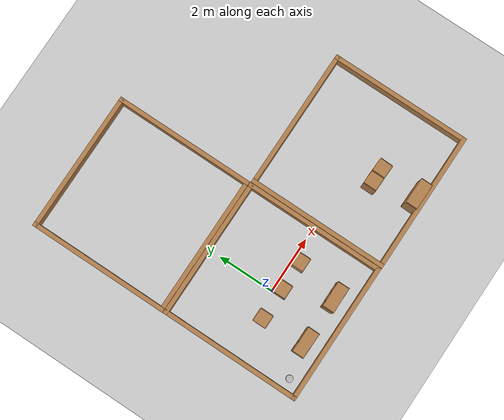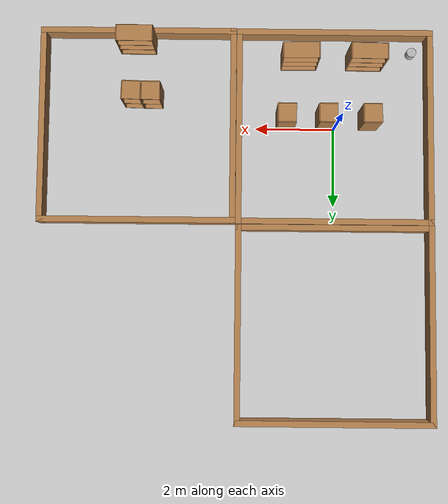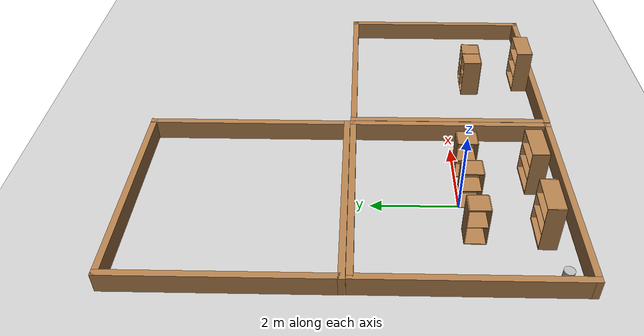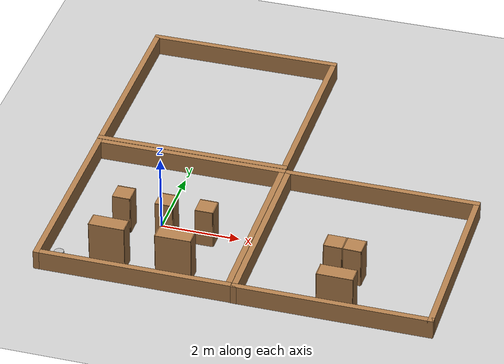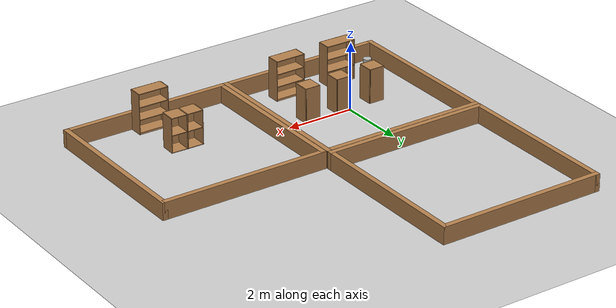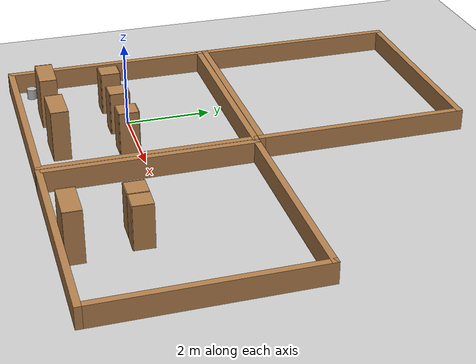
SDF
<sdf version="1.7">
 <world name="default">
  <model name="ground_plane">
   <static>1</static>
   <link name="link">
    <collision name="collision">
     <geometry><plane><normal>0 0 1</normal><size>100 100</size></plane></geometry>
     <surface><friction><ode><mu>100</mu><mu2>50</mu2></ode></friction></surface>
    </collision>
    <visual name="visual">
     <cast_shadows>0</cast_shadows>
     <geometry><plane><normal>0 0 1</normal><size>100 100</size></plane></geometry>
     <material>
      <script><uri>file://media/materials/scripts/gazebo.material</uri><name>Gazebo/Grey</name></script>
     </material>
    </visual>
   </link>
  </model>
  <model name="turtlebot3_dqn_world">
   <pose>0.00548 -0.006455 0 0 -0 0</pose>
   <static>1</static>
   <frame name="turtlebot3_square::__model__" attached_to="turtlebot3_square::Wall_1">
    <pose relative_to="__model__">0 0 0 0 -0 0</pose>
   </frame>
   <link name="turtlebot3_square::Wall_1">
    <collision name="Wall_1_Collision">
     <geometry><box><size>5 0.15 0.5</size></box></geometry>
     <pose>0 0 0.25 0 -0 0</pose>
    </collision>
    <visual name="Wall_1_Visual">
     <pose>0 0 0.25 0 -0 0</pose>
     <geometry><box><size>5 0.15 0.5</size></box></geometry>
     <material>
      <script><uri>file://media/materials/scripts/gazebo.material</uri><name>Gazebo/Wood</name></script>
      <ambient>1 1 1 1</ambient>
     </material>
    </visual>
    <pose relative_to="turtlebot3_square::__model__">-2.425 0 0 0 -0 1.5708</pose>
   </link>
   <link name="turtlebot3_square::Wall_2">
    <collision name="Wall_2_Collision">
     <geometry><box><size>5 0.15 0.5</size></box></geometry>
     <pose>0 0 0.25 0 -0 0</pose>
    </collision>
    <visual name="Wall_2_Visual">
     <pose>0 0 0.25 0 -0 0</pose>
     <geometry><box><size>5 0.15 0.5</size></box></geometry>
     <material>
      <script><uri>file://media/materials/scripts/gazebo.material</uri><name>Gazebo/Wood</name></script>
      <ambient>1 1 1 1</ambient>
     </material>
    </visual>
    <pose relative_to="turtlebot3_square::__model__">0 2.425 0 0 -0 0</pose>
   </link>
   <link name="turtlebot3_square::Wall_3">
    <collision name="Wall_3_Collision">
     <geometry><box><size>5 0.15 0.5</size></box></geometry>
     <pose>0 0 0.25 0 -0 0</pose>
    </collision>
    <visual name="Wall_3_Visual">
     <pose>0 0 0.25 0 -0 0</pose>
     <geometry><box><size>5 0.15 0.5</size></box></geometry>
     <material>
      <script><uri>file://media/materials/scripts/gazebo.material</uri><name>Gazebo/Wood</name></script>
      <ambient>1 1 1 1</ambient>
     </material>
    </visual>
    <pose relative_to="turtlebot3_square::__model__">2.425 0 0 0 0 -1.5708</pose>
   </link>
   <link name="turtlebot3_square::Wall_4">
    <collision name="Wall_4_Collision">
     <geometry><box><size>5 0.15 0.5</size></box></geometry>
     <pose>0 0 0.25 0 -0 0</pose>
    </collision>
    <visual name="Wall_4_Visual">
     <pose>0 0 0.25 0 -0 0</pose>
     <geometry><box><size>5 0.15 0.5</size></box></geometry>
     <material>
      <script><uri>file://media/materials/scripts/gazebo.material</uri><name>Gazebo/Wood</name></script>
      <ambient>1 1 1 1</ambient>
     </material>
    </visual>
    <pose relative_to="turtlebot3_square::__model__">0 -2.425 0 0 -0 3.14159</pose>
   </link>
   <static>1</static>
  </model>
  <model name="turtlebot3_dqn_obstacle2">
   <pose>-0 0 0.124991 0 -0 0</pose>
   <plugin name="obstacle2" filename="libobstacle2.so"/>
   <frame name="obstacle2::__model__" attached_to="obstacle2::link">
    <pose relative_to="__model__">-2 -2 0 0 -0 0</pose>
   </frame>
   <link name="obstacle2::link">
    <collision name="collision">
     <geometry><cylinder><radius>0.12</radius><length>0.25</length></cylinder></geometry>
    </collision>
    <visual name="visual">
     <geometry><cylinder><radius>0.12</radius><length>0.25</length></cylinder></geometry>
    </visual>
    <pose relative_to="obstacle2::__model__">0 0 0 0 -0 0</pose>
    <inertial>
     <inertia><ixx>1</ixx><ixy>0</ixy><ixz>0</ixz><iyy>1</iyy><iyz>0</iyz><izz>1</izz></inertia>
     <mass>1</mass>
    </inertial>
   </link>
  </model>
  <model name="turtlebot3_dqn_world2">
   <static>1</static>
   <frame name="turtlebot3_square::__model__" attached_to="turtlebot3_square::Wall_1">
    <pose relative_to="__model__">0 5 0 0 -0 0</pose>
   </frame>
   <link name="turtlebot3_square::Wall_1">
    <collision name="Wall_1_Collision">
     <geometry><box><size>5 0.15 0.5</size></box></geometry>
     <pose>0 0 0.25 0 -0 0</pose>
    </collision>
    <visual name="Wall_1_Visual">
     <pose>0 0 0.25 0 -0 0</pose>
     <geometry><box><size>5 0.15 0.5</size></box></geometry>
     <material>
      <script><uri>file://media/materials/scripts/gazebo.material</uri><name>Gazebo/Wood</name></script>
      <ambient>1 1 1 1</ambient>
     </material>
    </visual>
    <pose relative_to="turtlebot3_square::__model__">-2.425 0 0 0 -0 1.5708</pose>
   </link>
   <link name="turtlebot3_square::Wall_2">
    <collision name="Wall_2_Collision">
     <geometry><box><size>5 0.15 0.5</size></box></geometry>
     <pose>0 0 0.25 0 -0 0</pose>
    </collision>
    <visual name="Wall_2_Visual">
     <pose>0 0 0.25 0 -0 0</pose>
     <geometry><box><size>5 0.15 0.5</size></box></geometry>
     <material>
      <script><uri>file://media/materials/scripts/gazebo.material</uri><name>Gazebo/Wood</name></script>
      <ambient>1 1 1 1</ambient>
     </material>
    </visual>
    <pose relative_to="turtlebot3_square::__model__">0 2.425 0 0 -0 0</pose>
   </link>
   <link name="turtlebot3_square::Wall_3">
    <collision name="Wall_3_Collision">
     <geometry><box><size>5 0.15 0.5</size></box></geometry>
     <pose>0 0 0.25 0 -0 0</pose>
    </collision>
    <visual name="Wall_3_Visual">
     <pose>0 0 0.25 0 -0 0</pose>
     <geometry><box><size>5 0.15 0.5</size></box></geometry>
     <material>
      <script><uri>file://media/materials/scripts/gazebo.material</uri><name>Gazebo/Wood</name></script>
      <ambient>1 1 1 1</ambient>
     </material>
    </visual>
    <pose relative_to="turtlebot3_square::__model__">2.425 0 0 0 0 -1.5708</pose>
   </link>
   <link name="turtlebot3_square::Wall_4">
    <collision name="Wall_4_Collision">
     <geometry><box><size>5 0.15 0.5</size></box></geometry>
     <pose>0 0 0.25 0 -0 0</pose>
    </collision>
    <visual name="Wall_4_Visual">
     <pose>0 0 0.25 0 -0 0</pose>
     <geometry><box><size>5 0.15 0.5</size></box></geometry>
     <material>
      <script><uri>file://media/materials/scripts/gazebo.material</uri><name>Gazebo/Wood</name></script>
      <ambient>1 1 1 1</ambient>
     </material>
    </visual>
    <pose relative_to="turtlebot3_square::__model__">0 -2.425 0 0 -0 3.14159</pose>
   </link>
   <static>1</static>
  </model>
  <model name="cabinet_1">
   <static>1</static>
   <link name="cabinet_bottom_plate">
    <inertial>
     <pose>0 0 -1 0 -0 0</pose>
     <inertia><ixx>2.05</ixx><ixy>0</ixy><ixz>0</ixz><iyy>2.05</iyy><iyz>0</iyz><izz>2.05</izz></inertia>
     <mass>25</mass>
    </inertial>
    <collision name="cabinet_bottom_plate_geom">
     <pose>0 0 0.01 0 -0 0</pose>
     <geometry><box><size>0.45 0.45 0.02</size></box></geometry>
    </collision>
    <visual name="cabinet_bottom_plate_geom_visual">
     <pose>0 0 0.01 0 -0 0</pose>
     <geometry><box><size>0.45 0.45 0.02</size></box></geometry>
     <material>
      <script><uri>file://media/materials/scripts/gazebo.material</uri><name>Gazebo/Wood</name></script>
     </material>
    </visual>
    <collision name="cabinet_bottom_plate_geom_cabinet_back_plate">
     <pose>0.235 0 0.51 0 -0 0</pose>
     <geometry><box><size>0.02 0.45 1.02</size></box></geometry>
    </collision>
    <visual name="cabinet_bottom_plate_geom_cabinet_back_plate_visual">
     <pose>0.235 0 0.51 0 -0 0</pose>
     <geometry><box><size>0.02 0.45 1.02</size></box></geometry>
     <material>
      <script><uri>file://media/materials/scripts/gazebo.material</uri><name>Gazebo/Wood</name></script>
     </material>
    </visual>
    <collision name="cabinet_bottom_plate_geom_cabinet_left_plate">
     <pose>0 0.235 0.51 0 -0 0</pose>
     <geometry><box><size>0.45 0.02 1.02</size></box></geometry>
    </collision>
    <visual name="cabinet_bottom_plate_geom_cabinet_left_plate_visual">
     <pose>0 0.235 0.51 0 -0 0</pose>
     <geometry><box><size>0.45 0.02 1.02</size></box></geometry>
     <material>
      <script><uri>file://media/materials/scripts/gazebo.material</uri><name>Gazebo/Wood</name></script>
     </material>
    </visual>
    <collision name="cabinet_bottom_plate_geom_cabinet_middle_plate">
     <pose>0 0 0.51 0 -0 0</pose>
     <geometry><box><size>0.45 0.45 0.02</size></box></geometry>
    </collision>
    <visual name="cabinet_bottom_plate_geom_cabinet_middle_plate_visual">
     <pose>0 0 0.51 0 -0 0</pose>
     <geometry><box><size>0.45 0.45 0.02</size></box></geometry>
     <material>
      <script><uri>file://media/materials/scripts/gazebo.material</uri><name>Gazebo/Wood</name></script>
     </material>
    </visual>
    <collision name="cabinet_bottom_plate_geom_cabinet_right_plate">
     <pose>0 -0.235 0.51 0 -0 0</pose>
     <geometry><box><size>0.45 0.02 1.02</size></box></geometry>
    </collision>
    <visual name="cabinet_bottom_plate_geom_cabinet_right_plate_visual">
     <pose>0 -0.235 0.51 0 -0 0</pose>
     <geometry><box><size>0.45 0.02 1.02</size></box></geometry>
     <material>
      <script><uri>file://media/materials/scripts/gazebo.material</uri><name>Gazebo/Wood</name></script>
     </material>
    </visual>
    <collision name="cabinet_bottom_plate_geom_cabinet_top_plate">
     <pose>0 0 1.01 0 -0 0</pose>
     <geometry><box><size>0.45 0.45 0.02</size></box></geometry>
    </collision>
    <visual name="cabinet_bottom_plate_geom_cabinet_top_plate_visual">
     <pose>0 0 1.01 0 -0 0</pose>
     <geometry><box><size>0.45 0.45 0.02</size></box></geometry>
     <material>
      <script><uri>file://media/materials/scripts/gazebo.material</uri><name>Gazebo/Wood</name></script>
     </material>
    </visual>
   </link>
   <pose>1.23211 -0.234998 0 0 -0 0</pose>
  </model>
  <model name="cabinet_2">
   <static>1</static>
   <link name="cabinet_bottom_plate">
    <inertial>
     <pose>0 0 -1 0 -0 0</pose>
     <inertia><ixx>2.05</ixx><ixy>0</ixy><ixz>0</ixz><iyy>2.05</iyy><iyz>0</iyz><izz>2.05</izz></inertia>
     <mass>25</mass>
    </inertial>
    <collision name="cabinet_bottom_plate_geom">
     <pose>0 0 0.01 0 -0 0</pose>
     <geometry><box><size>0.45 0.45 0.02</size></box></geometry>
    </collision>
    <visual name="cabinet_bottom_plate_geom_visual">
     <pose>0 0 0.01 0 -0 0</pose>
     <geometry><box><size>0.45 0.45 0.02</size></box></geometry>
     <material>
      <script><uri>file://media/materials/scripts/gazebo.material</uri><name>Gazebo/Wood</name></script>
     </material>
    </visual>
    <collision name="cabinet_bottom_plate_geom_cabinet_back_plate">
     <pose>0.235 0 0.51 0 -0 0</pose>
     <geometry><box><size>0.02 0.45 1.02</size></box></geometry>
    </collision>
    <visual name="cabinet_bottom_plate_geom_cabinet_back_plate_visual">
     <pose>0.235 0 0.51 0 -0 0</pose>
     <geometry><box><size>0.02 0.45 1.02</size></box></geometry>
     <material>
      <script><uri>file://media/materials/scripts/gazebo.material</uri><name>Gazebo/Wood</name></script>
     </material>
    </visual>
    <collision name="cabinet_bottom_plate_geom_cabinet_left_plate">
     <pose>0 0.235 0.51 0 -0 0</pose>
     <geometry><box><size>0.45 0.02 1.02</size></box></geometry>
    </collision>
    <visual name="cabinet_bottom_plate_geom_cabinet_left_plate_visual">
     <pose>0 0.235 0.51 0 -0 0</pose>
     <geometry><box><size>0.45 0.02 1.02</size></box></geometry>
     <material>
      <script><uri>file://media/materials/scripts/gazebo.material</uri><name>Gazebo/Wood</name></script>
     </material>
    </visual>
    <collision name="cabinet_bottom_plate_geom_cabinet_middle_plate">
     <pose>0 0 0.51 0 -0 0</pose>
     <geometry><box><size>0.45 0.45 0.02</size></box></geometry>
    </collision>
    <visual name="cabinet_bottom_plate_geom_cabinet_middle_plate_visual">
     <pose>0 0 0.51 0 -0 0</pose>
     <geometry><box><size>0.45 0.45 0.02</size></box></geometry>
     <material>
      <script><uri>file://media/materials/scripts/gazebo.material</uri><name>Gazebo/Wood</name></script>
     </material>
    </visual>
    <collision name="cabinet_bottom_plate_geom_cabinet_right_plate">
     <pose>0 -0.235 0.51 0 -0 0</pose>
     <geometry><box><size>0.45 0.02 1.02</size></box></geometry>
    </collision>
    <visual name="cabinet_bottom_plate_geom_cabinet_right_plate_visual">
     <pose>0 -0.235 0.51 0 -0 0</pose>
     <geometry><box><size>0.45 0.02 1.02</size></box></geometry>
     <material>
      <script><uri>file://media/materials/scripts/gazebo.material</uri><name>Gazebo/Wood</name></script>
     </material>
    </visual>
    <collision name="cabinet_bottom_plate_geom_cabinet_top_plate">
     <pose>0 0 1.01 0 -0 0</pose>
     <geometry><box><size>0.45 0.45 0.02</size></box></geometry>
    </collision>
    <visual name="cabinet_bottom_plate_geom_cabinet_top_plate_visual">
     <pose>0 0 1.01 0 -0 0</pose>
     <geometry><box><size>0.45 0.45 0.02</size></box></geometry>
     <material>
      <script><uri>file://media/materials/scripts/gazebo.material</uri><name>Gazebo/Wood</name></script>
     </material>
    </visual>
   </link>
   <pose>0.209044 -0.240001 0 0 -0 0</pose>
  </model>
  <model name="cabinet_3">
   <static>1</static>
   <link name="cabinet_bottom_plate">
    <inertial>
     <pose>0 0 -1 0 -0 0</pose>
     <inertia><ixx>2.05</ixx><ixy>0</ixy><ixz>0</ixz><iyy>2.05</iyy><iyz>0</iyz><izz>2.05</izz></inertia>
     <mass>25</mass>
    </inertial>
    <collision name="cabinet_bottom_plate_geom">
     <pose>0 0 0.01 0 -0 0</pose>
     <geometry><box><size>0.45 0.45 0.02</size></box></geometry>
    </collision>
    <visual name="cabinet_bottom_plate_geom_visual">
     <pose>0 0 0.01 0 -0 0</pose>
     <geometry><box><size>0.45 0.45 0.02</size></box></geometry>
     <material>
      <script><uri>file://media/materials/scripts/gazebo.material</uri><name>Gazebo/Wood</name></script>
     </material>
    </visual>
    <collision name="cabinet_bottom_plate_geom_cabinet_back_plate">
     <pose>0.235 0 0.51 0 -0 0</pose>
     <geometry><box><size>0.02 0.45 1.02</size></box></geometry>
    </collision>
    <visual name="cabinet_bottom_plate_geom_cabinet_back_plate_visual">
     <pose>0.235 0 0.51 0 -0 0</pose>
     <geometry><box><size>0.02 0.45 1.02</size></box></geometry>
     <material>
      <script><uri>file://media/materials/scripts/gazebo.material</uri><name>Gazebo/Wood</name></script>
     </material>
    </visual>
    <collision name="cabinet_bottom_plate_geom_cabinet_left_plate">
     <pose>0 0.235 0.51 0 -0 0</pose>
     <geometry><box><size>0.45 0.02 1.02</size></box></geometry>
    </collision>
    <visual name="cabinet_bottom_plate_geom_cabinet_left_plate_visual">
     <pose>0 0.235 0.51 0 -0 0</pose>
     <geometry><box><size>0.45 0.02 1.02</size></box></geometry>
     <material>
      <script><uri>file://media/materials/scripts/gazebo.material</uri><name>Gazebo/Wood</name></script>
     </material>
    </visual>
    <collision name="cabinet_bottom_plate_geom_cabinet_middle_plate">
     <pose>0 0 0.51 0 -0 0</pose>
     <geometry><box><size>0.45 0.45 0.02</size></box></geometry>
    </collision>
    <visual name="cabinet_bottom_plate_geom_cabinet_middle_plate_visual">
     <pose>0 0 0.51 0 -0 0</pose>
     <geometry><box><size>0.45 0.45 0.02</size></box></geometry>
     <material>
      <script><uri>file://media/materials/scripts/gazebo.material</uri><name>Gazebo/Wood</name></script>
     </material>
    </visual>
    <collision name="cabinet_bottom_plate_geom_cabinet_right_plate">
     <pose>0 -0.235 0.51 0 -0 0</pose>
     <geometry><box><size>0.45 0.02 1.02</size></box></geometry>
    </collision>
    <visual name="cabinet_bottom_plate_geom_cabinet_right_plate_visual">
     <pose>0 -0.235 0.51 0 -0 0</pose>
     <geometry><box><size>0.45 0.02 1.02</size></box></geometry>
     <material>
      <script><uri>file://media/materials/scripts/gazebo.material</uri><name>Gazebo/Wood</name></script>
     </material>
    </visual>
    <collision name="cabinet_bottom_plate_geom_cabinet_top_plate">
     <pose>0 0 1.01 0 -0 0</pose>
     <geometry><box><size>0.45 0.45 0.02</size></box></geometry>
    </collision>
    <visual name="cabinet_bottom_plate_geom_cabinet_top_plate_visual">
     <pose>0 0 1.01 0 -0 0</pose>
     <geometry><box><size>0.45 0.45 0.02</size></box></geometry>
     <material>
      <script><uri>file://media/materials/scripts/gazebo.material</uri><name>Gazebo/Wood</name></script>
     </material>
    </visual>
   </link>
   <pose>-0.890122 -0.240947 0 0 -0 0</pose>
  </model>
  <model name="bookshelf_1">
   <static>1</static>
   <link name="link">
    <inertial><mass>1</mass></inertial>
    <collision name="back">
     <pose>0 0.005 0.6 0 -0 0</pose>
     <geometry><box><size>0.9 0.01 1.2</size></box></geometry>
    </collision>
    <visual name="visual1">
     <pose>0 0.005 0.6 0 -0 0</pose>
     <geometry><box><size>0.9 0.01 1.2</size></box></geometry>
     <material>
      <script><uri>file://media/materials/scripts/gazebo.material</uri><name>Gazebo/Wood</name></script>
     </material>
    </visual>
    <collision name="left_side">
     <pose>0.45 -0.195 0.6 0 -0 0</pose>
     <geometry><box><size>0.02 0.4 1.2</size></box></geometry>
    </collision>
    <visual name="visual2">
     <pose>0.45 -0.195 0.6 0 -0 0</pose>
     <geometry><box><size>0.02 0.4 1.2</size></box></geometry>
     <material>
      <script><uri>file://media/materials/scripts/gazebo.material</uri><name>Gazebo/Wood</name></script>
     </material>
    </visual>
    <collision name="right_side">
     <pose>-0.45 -0.195 0.6 0 -0 0</pose>
     <geometry><box><size>0.02 0.4 1.2</size></box></geometry>
    </collision>
    <visual name="visual3">
     <pose>-0.45 -0.195 0.6 0 -0 0</pose>
     <geometry><box><size>0.02 0.4 1.2</size></box></geometry>
     <material>
      <script><uri>file://media/materials/scripts/gazebo.material</uri><name>Gazebo/Wood</name></script>
     </material>
    </visual>
    <collision name="bottom">
     <pose>0 -0.195 0.03 0 -0 0</pose>
     <geometry><box><size>0.88 0.4 0.06</size></box></geometry>
    </collision>
    <visual name="visual4">
     <pose>0 -0.195 0.03 0 -0 0</pose>
     <geometry><box><size>0.88 0.4 0.06</size></box></geometry>
     <material>
      <script><uri>file://media/materials/scripts/gazebo.material</uri><name>Gazebo/Wood</name></script>
     </material>
    </visual>
    <collision name="top">
     <pose>0 -0.195 1.19 0 -0 0</pose>
     <geometry><box><size>0.88 0.4 0.02</size></box></geometry>
    </collision>
    <visual name="visual5">
     <pose>0 -0.195 1.19 0 -0 0</pose>
     <geometry><box><size>0.88 0.4 0.02</size></box></geometry>
     <material>
      <script><uri>file://media/materials/scripts/gazebo.material</uri><name>Gazebo/Wood</name></script>
     </material>
    </visual>
    <collision name="low_shelf">
     <pose>0 -0.195 0.43 0 -0 0</pose>
     <geometry><box><size>0.88 0.4 0.02</size></box></geometry>
    </collision>
    <visual name="visual6">
     <pose>0 -0.195 0.43 0 -0 0</pose>
     <geometry><box><size>0.88 0.4 0.02</size></box></geometry>
     <material>
      <script><uri>file://media/materials/scripts/gazebo.material</uri><name>Gazebo/Wood</name></script>
     </material>
    </visual>
    <collision name="high_shelf">
     <pose>0 -0.195 0.8 0 -0 0</pose>
     <geometry><box><size>0.88 0.4 0.02</size></box></geometry>
    </collision>
    <visual name="visual7">
     <pose>0 -0.195 0.8 0 -0 0</pose>
     <geometry><box><size>0.88 0.4 0.02</size></box></geometry>
     <material>
      <script><uri>file://media/materials/scripts/gazebo.material</uri><name>Gazebo/Wood</name></script>
     </material>
    </visual>
   </link>
   <pose>0.903255 -1.95742 0 0 0 -3.13284</pose>
  </model>
  <model name="bookshelf_2">
   <static>1</static>
   <link name="link">
    <inertial><mass>1</mass></inertial>
    <collision name="back">
     <pose>0 0.005 0.6 0 -0 0</pose>
     <geometry><box><size>0.9 0.01 1.2</size></box></geometry>
    </collision>
    <visual name="visual1">
     <pose>0 0.005 0.6 0 -0 0</pose>
     <geometry><box><size>0.9 0.01 1.2</size></box></geometry>
     <material>
      <script><uri>file://media/materials/scripts/gazebo.material</uri><name>Gazebo/Wood</name></script>
     </material>
    </visual>
    <collision name="left_side">
     <pose>0.45 -0.195 0.6 0 -0 0</pose>
     <geometry><box><size>0.02 0.4 1.2</size></box></geometry>
    </collision>
    <visual name="visual2">
     <pose>0.45 -0.195 0.6 0 -0 0</pose>
     <geometry><box><size>0.02 0.4 1.2</size></box></geometry>
     <material>
      <script><uri>file://media/materials/scripts/gazebo.material</uri><name>Gazebo/Wood</name></script>
     </material>
    </visual>
    <collision name="right_side">
     <pose>-0.45 -0.195 0.6 0 -0 0</pose>
     <geometry><box><size>0.02 0.4 1.2</size></box></geometry>
    </collision>
    <visual name="visual3">
     <pose>-0.45 -0.195 0.6 0 -0 0</pose>
     <geometry><box><size>0.02 0.4 1.2</size></box></geometry>
     <material>
      <script><uri>file://media/materials/scripts/gazebo.material</uri><name>Gazebo/Wood</name></script>
     </material>
    </visual>
    <collision name="bottom">
     <pose>0 -0.195 0.03 0 -0 0</pose>
     <geometry><box><size>0.88 0.4 0.06</size></box></geometry>
    </collision>
    <visual name="visual4">
     <pose>0 -0.195 0.03 0 -0 0</pose>
     <geometry><box><size>0.88 0.4 0.06</size></box></geometry>
     <material>
      <script><uri>file://media/materials/scripts/gazebo.material</uri><name>Gazebo/Wood</name></script>
     </material>
    </visual>
    <collision name="top">
     <pose>0 -0.195 1.19 0 -0 0</pose>
     <geometry><box><size>0.88 0.4 0.02</size></box></geometry>
    </collision>
    <visual name="visual5">
     <pose>0 -0.195 1.19 0 -0 0</pose>
     <geometry><box><size>0.88 0.4 0.02</size></box></geometry>
     <material>
      <script><uri>file://media/materials/scripts/gazebo.material</uri><name>Gazebo/Wood</name></script>
     </material>
    </visual>
    <collision name="low_shelf">
     <pose>0 -0.195 0.43 0 -0 0</pose>
     <geometry><box><size>0.88 0.4 0.02</size></box></geometry>
    </collision>
    <visual name="visual6">
     <pose>0 -0.195 0.43 0 -0 0</pose>
     <geometry><box><size>0.88 0.4 0.02</size></box></geometry>
     <material>
      <script><uri>file://media/materials/scripts/gazebo.material</uri><name>Gazebo/Wood</name></script>
     </material>
    </visual>
    <collision name="high_shelf">
     <pose>0 -0.195 0.8 0 -0 0</pose>
     <geometry><box><size>0.88 0.4 0.02</size></box></geometry>
    </collision>
    <visual name="visual7">
     <pose>0 -0.195 0.8 0 -0 0</pose>
     <geometry><box><size>0.88 0.4 0.02</size></box></geometry>
     <material>
      <script><uri>file://media/materials/scripts/gazebo.material</uri><name>Gazebo/Wood</name></script>
     </material>
    </visual>
   </link>
   <pose>-0.783777 -1.9532 0 0 -0 3.12951</pose>
  </model>
  <model name="turtlebot3_square">
   <pose>5.01138 -0.015749 0 0 -0 0</pose>
   <link name="Wall_1">
    <collision name="Wall_1_Collision">
     <geometry><box><size>5 0.15 0.5</size></box></geometry>
     <pose>0 0 0.25 0 -0 0</pose>
    </collision>
    <visual name="Wall_1_Visual">
     <pose>0 0 0.25 0 -0 0</pose>
     <geometry><box><size>5 0.15 0.5</size></box></geometry>
     <material>
      <script><uri>file://media/materials/scripts/gazebo.material</uri><name>Gazebo/Wood</name></script>
      <ambient>1 1 1 1</ambient>
     </material>
    </visual>
    <pose>-2.425 0 0 0 -0 1.5708</pose>
   </link>
   <link name="Wall_2">
    <collision name="Wall_2_Collision">
     <geometry><box><size>5 0.15 0.5</size></box></geometry>
     <pose>0 0 0.25 0 -0 0</pose>
    </collision>
    <visual name="Wall_2_Visual">
     <pose>0 0 0.25 0 -0 0</pose>
     <geometry><box><size>5 0.15 0.5</size></box></geometry>
     <material>
      <script><uri>file://media/materials/scripts/gazebo.material</uri><name>Gazebo/Wood</name></script>
      <ambient>1 1 1 1</ambient>
     </material>
    </visual>
    <pose>0 2.425 0 0 -0 0</pose>
   </link>
   <link name="Wall_3">
    <collision name="Wall_3_Collision">
     <geometry><box><size>5 0.15 0.5</size></box></geometry>
     <pose>0 0 0.25 0 -0 0</pose>
    </collision>
    <visual name="Wall_3_Visual">
     <pose>0 0 0.25 0 -0 0</pose>
     <geometry><box><size>5 0.15 0.5</size></box></geometry>
     <material>
      <script><uri>file://media/materials/scripts/gazebo.material</uri><name>Gazebo/Wood</name></script>
      <ambient>1 1 1 1</ambient>
     </material>
    </visual>
    <pose>2.425 0 0 0 0 -1.5708</pose>
   </link>
   <link name="Wall_4">
    <collision name="Wall_4_Collision">
     <geometry><box><size>5 0.15 0.5</size></box></geometry>
     <pose>0 0 0.25 0 -0 0</pose>
    </collision>
    <visual name="Wall_4_Visual">
     <pose>0 0 0.25 0 -0 0</pose>
     <geometry><box><size>5 0.15 0.5</size></box></geometry>
     <material>
      <script><uri>file://media/materials/scripts/gazebo.material</uri><name>Gazebo/Wood</name></script>
      <ambient>1 1 1 1</ambient>
     </material>
    </visual>
    <pose>0 -2.425 0 0 -0 3.14159</pose>
   </link>
   <static>1</static>
  </model>
  <model name="cabinet_8">
   <static>1</static>
   <link name="cabinet_bottom_plate">
    <inertial>
     <pose>0 0 -1 0 -0 0</pose>
     <inertia><ixx>2.05</ixx><ixy>0</ixy><ixz>0</ixz><iyy>2.05</iyy><iyz>0</iyz><izz>2.05</izz></inertia>
     <mass>25</mass>
    </inertial>
    <collision name="cabinet_bottom_plate_geom">
     <pose>0 0 0.01 0 -0 0</pose>
     <geometry><box><size>0.45 0.45 0.02</size></box></geometry>
    </collision>
    <visual name="cabinet_bottom_plate_geom_visual">
     <pose>0 0 0.01 0 -0 0</pose>
     <geometry><box><size>0.45 0.45 0.02</size></box></geometry>
     <material>
      <script><uri>file://media/materials/scripts/gazebo.material</uri><name>Gazebo/Wood</name></script>
     </material>
    </visual>
    <collision name="cabinet_bottom_plate_geom_cabinet_back_plate">
     <pose>0.235 0 0.51 0 -0 0</pose>
     <geometry><box><size>0.02 0.45 1.02</size></box></geometry>
    </collision>
    <visual name="cabinet_bottom_plate_geom_cabinet_back_plate_visual">
     <pose>0.235 0 0.51 0 -0 0</pose>
     <geometry><box><size>0.02 0.45 1.02</size></box></geometry>
     <material>
      <script><uri>file://media/materials/scripts/gazebo.material</uri><name>Gazebo/Wood</name></script>
     </material>
    </visual>
    <collision name="cabinet_bottom_plate_geom_cabinet_left_plate">
     <pose>0 0.235 0.51 0 -0 0</pose>
     <geometry><box><size>0.45 0.02 1.02</size></box></geometry>
    </collision>
    <visual name="cabinet_bottom_plate_geom_cabinet_left_plate_visual">
     <pose>0 0.235 0.51 0 -0 0</pose>
     <geometry><box><size>0.45 0.02 1.02</size></box></geometry>
     <material>
      <script><uri>file://media/materials/scripts/gazebo.material</uri><name>Gazebo/Wood</name></script>
     </material>
    </visual>
    <collision name="cabinet_bottom_plate_geom_cabinet_middle_plate">
     <pose>0 0 0.51 0 -0 0</pose>
     <geometry><box><size>0.45 0.45 0.02</size></box></geometry>
    </collision>
    <visual name="cabinet_bottom_plate_geom_cabinet_middle_plate_visual">
     <pose>0 0 0.51 0 -0 0</pose>
     <geometry><box><size>0.45 0.45 0.02</size></box></geometry>
     <material>
      <script><uri>file://media/materials/scripts/gazebo.material</uri><name>Gazebo/Wood</name></script>
     </material>
    </visual>
    <collision name="cabinet_bottom_plate_geom_cabinet_right_plate">
     <pose>0 -0.235 0.51 0 -0 0</pose>
     <geometry><box><size>0.45 0.02 1.02</size></box></geometry>
    </collision>
    <visual name="cabinet_bottom_plate_geom_cabinet_right_plate_visual">
     <pose>0 -0.235 0.51 0 -0 0</pose>
     <geometry><box><size>0.45 0.02 1.02</size></box></geometry>
     <material>
      <script><uri>file://media/materials/scripts/gazebo.material</uri><name>Gazebo/Wood</name></script>
     </material>
    </visual>
    <collision name="cabinet_bottom_plate_geom_cabinet_top_plate">
     <pose>0 0 1.01 0 -0 0</pose>
     <geometry><box><size>0.45 0.45 0.02</size></box></geometry>
    </collision>
    <visual name="cabinet_bottom_plate_geom_cabinet_top_plate_visual">
     <pose>0 0 1.01 0 -0 0</pose>
     <geometry><box><size>0.45 0.45 0.02</size></box></geometry>
     <material>
      <script><uri>file://media/materials/scripts/gazebo.material</uri><name>Gazebo/Wood</name></script>
     </material>
    </visual>
   </link>
   <pose>4.63524 -0.750302 -0 0 0 -1.57872</pose>
  </model>
  <model name="cabinet_11">
   <static>1</static>
   <link name="cabinet_bottom_plate">
    <inertial>
     <pose>0 0 -1 0 -0 0</pose>
     <inertia><ixx>2.05</ixx><ixy>0</ixy><ixz>0</ixz><iyy>2.05</iyy><iyz>0</iyz><izz>2.05</izz></inertia>
     <mass>25</mass>
    </inertial>
    <collision name="cabinet_bottom_plate_geom">
     <pose>0 0 0.01 0 -0 0</pose>
     <geometry><box><size>0.45 0.45 0.02</size></box></geometry>
    </collision>
    <visual name="cabinet_bottom_plate_geom_visual">
     <pose>0 0 0.01 0 -0 0</pose>
     <geometry><box><size>0.45 0.45 0.02</size></box></geometry>
     <material>
      <script><uri>file://media/materials/scripts/gazebo.material</uri><name>Gazebo/Wood</name></script>
     </material>
    </visual>
    <collision name="cabinet_bottom_plate_geom_cabinet_back_plate">
     <pose>0.235 0 0.51 0 -0 0</pose>
     <geometry><box><size>0.02 0.45 1.02</size></box></geometry>
    </collision>
    <visual name="cabinet_bottom_plate_geom_cabinet_back_plate_visual">
     <pose>0.235 0 0.51 0 -0 0</pose>
     <geometry><box><size>0.02 0.45 1.02</size></box></geometry>
     <material>
      <script><uri>file://media/materials/scripts/gazebo.material</uri><name>Gazebo/Wood</name></script>
     </material>
    </visual>
    <collision name="cabinet_bottom_plate_geom_cabinet_left_plate">
     <pose>0 0.235 0.51 0 -0 0</pose>
     <geometry><box><size>0.45 0.02 1.02</size></box></geometry>
    </collision>
    <visual name="cabinet_bottom_plate_geom_cabinet_left_plate_visual">
     <pose>0 0.235 0.51 0 -0 0</pose>
     <geometry><box><size>0.45 0.02 1.02</size></box></geometry>
     <material>
      <script><uri>file://media/materials/scripts/gazebo.material</uri><name>Gazebo/Wood</name></script>
     </material>
    </visual>
    <collision name="cabinet_bottom_plate_geom_cabinet_middle_plate">
     <pose>0 0 0.51 0 -0 0</pose>
     <geometry><box><size>0.45 0.45 0.02</size></box></geometry>
    </collision>
    <visual name="cabinet_bottom_plate_geom_cabinet_middle_plate_visual">
     <pose>0 0 0.51 0 -0 0</pose>
     <geometry><box><size>0.45 0.45 0.02</size></box></geometry>
     <material>
      <script><uri>file://media/materials/scripts/gazebo.material</uri><name>Gazebo/Wood</name></script>
     </material>
    </visual>
    <collision name="cabinet_bottom_plate_geom_cabinet_right_plate">
     <pose>0 -0.235 0.51 0 -0 0</pose>
     <geometry><box><size>0.45 0.02 1.02</size></box></geometry>
    </collision>
    <visual name="cabinet_bottom_plate_geom_cabinet_right_plate_visual">
     <pose>0 -0.235 0.51 0 -0 0</pose>
     <geometry><box><size>0.45 0.02 1.02</size></box></geometry>
     <material>
      <script><uri>file://media/materials/scripts/gazebo.material</uri><name>Gazebo/Wood</name></script>
     </material>
    </visual>
    <collision name="cabinet_bottom_plate_geom_cabinet_top_plate">
     <pose>0 0 1.01 0 -0 0</pose>
     <geometry><box><size>0.45 0.45 0.02</size></box></geometry>
    </collision>
    <visual name="cabinet_bottom_plate_geom_cabinet_top_plate_visual">
     <pose>0 0 1.01 0 -0 0</pose>
     <geometry><box><size>0.45 0.45 0.02</size></box></geometry>
     <material>
      <script><uri>file://media/materials/scripts/gazebo.material</uri><name>Gazebo/Wood</name></script>
     </material>
    </visual>
   </link>
   <pose>5.12001 -0.759259 -0 0 0 -1.60111</pose>
  </model>
  <model name="bookshelf_4">
   <static>1</static>
   <link name="link">
    <inertial><mass>1</mass></inertial>
    <collision name="back">
     <pose>0 0.005 0.6 0 -0 0</pose>
     <geometry><box><size>0.9 0.01 1.2</size></box></geometry>
    </collision>
    <visual name="visual1">
     <pose>0 0.005 0.6 0 -0 0</pose>
     <geometry><box><size>0.9 0.01 1.2</size></box></geometry>
     <material>
      <script><uri>file://media/materials/scripts/gazebo.material</uri><name>Gazebo/Wood</name></script>
     </material>
    </visual>
    <collision name="left_side">
     <pose>0.45 -0.195 0.6 0 -0 0</pose>
     <geometry><box><size>0.02 0.4 1.2</size></box></geometry>
    </collision>
    <visual name="visual2">
     <pose>0.45 -0.195 0.6 0 -0 0</pose>
     <geometry><box><size>0.02 0.4 1.2</size></box></geometry>
     <material>
      <script><uri>file://media/materials/scripts/gazebo.material</uri><name>Gazebo/Wood</name></script>
     </material>
    </visual>
    <collision name="right_side">
     <pose>-0.45 -0.195 0.6 0 -0 0</pose>
     <geometry><box><size>0.02 0.4 1.2</size></box></geometry>
    </collision>
    <visual name="visual3">
     <pose>-0.45 -0.195 0.6 0 -0 0</pose>
     <geometry><box><size>0.02 0.4 1.2</size></box></geometry>
     <material>
      <script><uri>file://media/materials/scripts/gazebo.material</uri><name>Gazebo/Wood</name></script>
     </material>
    </visual>
    <collision name="bottom">
     <pose>0 -0.195 0.03 0 -0 0</pose>
     <geometry><box><size>0.88 0.4 0.06</size></box></geometry>
    </collision>
    <visual name="visual4">
     <pose>0 -0.195 0.03 0 -0 0</pose>
     <geometry><box><size>0.88 0.4 0.06</size></box></geometry>
     <material>
      <script><uri>file://media/materials/scripts/gazebo.material</uri><name>Gazebo/Wood</name></script>
     </material>
    </visual>
    <collision name="top">
     <pose>0 -0.195 1.19 0 -0 0</pose>
     <geometry><box><size>0.88 0.4 0.02</size></box></geometry>
    </collision>
    <visual name="visual5">
     <pose>0 -0.195 1.19 0 -0 0</pose>
     <geometry><box><size>0.88 0.4 0.02</size></box></geometry>
     <material>
      <script><uri>file://media/materials/scripts/gazebo.material</uri><name>Gazebo/Wood</name></script>
     </material>
    </visual>
    <collision name="low_shelf">
     <pose>0 -0.195 0.43 0 -0 0</pose>
     <geometry><box><size>0.88 0.4 0.02</size></box></geometry>
    </collision>
    <visual name="visual6">
     <pose>0 -0.195 0.43 0 -0 0</pose>
     <geometry><box><size>0.88 0.4 0.02</size></box></geometry>
     <material>
      <script><uri>file://media/materials/scripts/gazebo.material</uri><name>Gazebo/Wood</name></script>
     </material>
    </visual>
    <collision name="high_shelf">
     <pose>0 -0.195 0.8 0 -0 0</pose>
     <geometry><box><size>0.88 0.4 0.02</size></box></geometry>
    </collision>
    <visual name="visual7">
     <pose>0 -0.195 0.8 0 -0 0</pose>
     <geometry><box><size>0.88 0.4 0.02</size></box></geometry>
     <material>
      <script><uri>file://media/materials/scripts/gazebo.material</uri><name>Gazebo/Wood</name></script>
     </material>
    </visual>
   </link>
   <pose>5.04134 -2.34861 0 0 -0 3.13308</pose>
  </model>
 </world>
</sdf>
